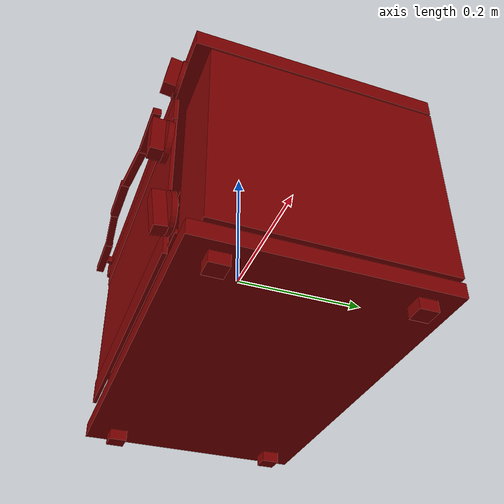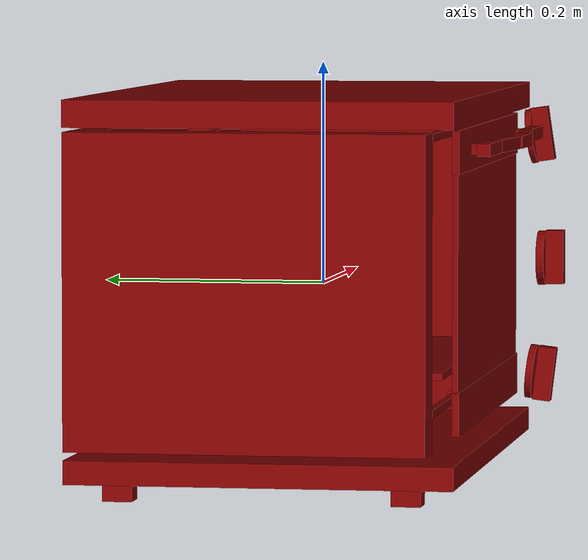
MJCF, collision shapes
<?xml version='1.0' encoding='UTF-8'?>
<mujoco model="model">
  <option timestep="0.002" gravity="0.0 0.0 -9.81"/>
  <compiler angle="radian"/>
  <asset>
    <mesh file="visuals/Body001.obj" name="Body001_vis"/>
    <mesh file="visuals/Door001.obj" name="Door001_vis"/>
    <mesh file="visuals/Door001_Clear.obj" name="Door001_Clear_vis"/>
    <mesh file="visuals/Knob001.obj" name="Knob001_vis"/>
    <mesh file="visuals/Knob002.obj" name="Knob002_vis"/>
    <mesh file="visuals/Knob003.obj" name="Knob003_vis"/>
    <mesh file="visuals/Shelf001.obj" name="Shelf001_vis"/>
    <texture file="visuals/T_BC001.png" name="Body001_material" type="2d"/>
    <material name="Body001_material" rgba="1 1 1 1.0" texture="Body001_material" shininess="0.5968968570232391" specular="2"/>
    <texture file="visuals/T_BC001.png" name="Door001_material" type="2d"/>
    <material name="Door001_material" rgba="1 1 1 1.0" texture="Door001_material" shininess="0.5968968570232391" specular="2"/>
    <texture file="visuals/T_BC001.png" name="Door001_Clear_material" type="2d"/>
    <material name="Door001_Clear_material" rgba="1 1 1 0.6968325972557068" texture="Door001_Clear_material" shininess="0.5968968570232391" specular="0.3103448502657381"/>
    <texture file="visuals/T_BC001.png" name="Knob001_material" type="2d"/>
    <material name="Knob001_material" rgba="1 1 1 1.0" texture="Knob001_material" shininess="0.5968968570232391" specular="0.3103448502657381"/>
    <texture file="visuals/T_BC001.png" name="Knob002_material" type="2d"/>
    <material name="Knob002_material" rgba="1 1 1 1.0" texture="Knob002_material" shininess="0.5968968570232391" specular="0.3103448502657381"/>
    <texture file="visuals/T_BC001.png" name="Knob003_material" type="2d"/>
    <material name="Knob003_material" rgba="1 1 1 1.0" texture="Knob003_material" shininess="0.5968968570232391" specular="0.3103448502657381"/>
    <texture file="visuals/T_BC001.png" name="Shelf001_material" type="2d"/>
    <material name="Shelf001_material" rgba="1 1 1 1.0" texture="Shelf001_material" shininess="0.5968968570232391" specular="0.3103448502657381"/>
  </asset>
  <default>
    <default class="visual">
      <geom conaffinity="0" contype="0" group="1" type="mesh"/>
    </default>
    <default class="collision">
      <geom group="0" rgba="0.5 0 0 0.5"/>
    </default>
    <default class="spawn">
      <geom group="0" rgba="1 1 1 0.5" contype="0" conaffinity="0"/>
      <site group="0" rgba="1 1 1 0.5"/>
    </default>
    <default class="region">
      <geom group="1" conaffinity="0" contype="0" rgba="0 1 0 0"/>
    </default>
  </default>
  <worldbody>
    <body>
      <body name="object">
        <geom mesh="Body001_vis" type="mesh" solimp="0.998 0.998 0.001" solref="0.001 1" friction="0.95 0.3 0.1" class="visual" material="Body001_material"/>
        <geom class="collision" type="box" pos="-0.000000 0.014233 0.162156" size="0.270452082157135 0.1699085831642151 0.012023569084703922" quat="1.0 0.0 0.0 0.0"/>
        <geom class="collision" type="box" pos="-0.000000 0.014233 -0.147614" size="0.270452082157135 0.1699085831642151 0.010556421242654324" quat="1.0 0.0 0.0 0.0"/>
        <geom class="collision" type="box" pos="-0.248253 0.026392 0.008116" size="0.022198986262083054 0.15775004029273987 0.1382344365119934" quat="1.0 0.0 0.0 0.0"/>
        <geom class="collision" type="box" pos="0.216123 0.024037 0.008116" size="0.05432868003845215 0.16010470688343048 0.1382344365119934" quat="1.0 0.0 0.0 0.0"/>
        <geom class="collision" type="box" pos="0.241426 -0.112387 -0.165798" size="0.012542815878987312 0.01298120804131031 0.008328156545758247" quat="1.0 0.0 0.0 0.0"/>
        <geom class="collision" type="box" pos="-0.239811 -0.112387 -0.165798" size="0.012542815878987312 0.01298120804131031 0.008328156545758247" quat="1.0 0.0 0.0 0.0"/>
        <geom class="collision" type="box" pos="-0.239811 0.140115 -0.165798" size="0.012542815878987312 0.01298120804131031 0.008328156545758247" quat="1.0 0.0 0.0 0.0"/>
        <geom class="collision" type="box" pos="0.241426 0.140115 -0.165798" size="0.012542815878987312 0.01298120804131031 0.008328156545758247" quat="1.0 0.0 0.0 0.0"/>
        <geom class="collision" type="box" pos="-0.032895 0.169553 0.008116" size="0.19400712847709656 0.014055480249226093 0.1382344365119934" quat="1.0 0.0 0.0 0.0"/>
        <geom class="collision" type="box" pos="-0.032895 -0.098265 -0.118401" size="0.19400712847709656 0.0030847685411572456 0.00362002314068377" quat="1.0 0.0 0.0 0.0"/>
        <geom class="collision" type="box" pos="0.162467 -0.098344 -0.118184" size="0.004035026766359806 0.006262065842747688 0.006104288622736931" quat="1.0 0.0 0.0 0.0"/>
        <geom class="collision" type="box" pos="-0.226797 -0.098344 -0.118184" size="0.004035026766359806 0.006262065842747688 0.006104288622736931" quat="1.0 0.0 0.0 0.0"/>
        <geom class="collision" type="box" pos="-0.226797 0.107385 -0.118184" size="0.004035026766359806 0.006262065842747688 0.006104288622736931" quat="1.0 0.0 0.0 0.0"/>
        <geom class="collision" type="box" pos="0.162467 0.107385 -0.118184" size="0.004035026766359806 0.006262065842747688 0.006104288622736931" quat="1.0 0.0 0.0 0.0"/>
        <geom class="collision" type="box" pos="-0.032895 0.107464 -0.118401" size="0.19400712847709656 0.0030847685411572456 0.00362002314068377" quat="1.0 0.0 0.0 0.0"/>
        <geom class="collision" type="box" pos="-0.032895 0.107464 0.132027" size="0.19400712847709656 0.0030847685411572456 0.00362002314068377" quat="1.0 0.0 0.0 0.0"/>
        <geom class="collision" type="box" pos="0.162467 0.107385 0.132244" size="0.004035026766359806 0.006262065842747688 0.006104288622736931" quat="1.0 0.0 0.0 0.0"/>
        <geom class="collision" type="box" pos="-0.226797 0.107385 0.132244" size="0.004035026766359806 0.006262065842747688 0.006104288622736931" quat="1.0 0.0 0.0 0.0"/>
        <geom class="collision" type="box" pos="-0.226797 -0.098344 0.132244" size="0.004035026766359806 0.006262065842747688 0.006104288622736931" quat="1.0 0.0 0.0 0.0"/>
        <geom class="collision" type="box" pos="0.162467 -0.098344 0.132244" size="0.004035026766359806 0.006262065842747688 0.006104288622736931" quat="1.0 0.0 0.0 0.0"/>
        <geom class="collision" type="box" pos="-0.032895 -0.098265 0.132027" size="0.19400712847709656 0.0030847685411572456 0.00362002314068377" quat="1.0 0.0 0.0 0.0"/>
        <body name="Door001">
          <joint axis="1.0 0.0 0.0" pos="-0.031873 -0.152260 -0.134041" limited="true" name="Door001_joint" range="0.0 1.5707963267948966" type="hinge" damping="1" frictionloss="1" armature=".01" stiffness="1" springref="-0.5"/>
          <geom mesh="Door001_vis" type="mesh" solimp="0.998 0.998 0.001" solref="0.001 1" friction="0.95 0.3 0.1" class="visual" material="Door001_material"/>
          <geom class="collision" type="box" pos="-0.031864 -0.153075 -0.095676" size="0.2067703753709793 0.0028597707860171795 0.01883315108716488" quat="1.0 0.0 0.0 0.0"/>
          <geom class="collision" type="box" pos="-0.031864 -0.153075 0.129619" size="0.20677082240581512 0.0028597780037671328 0.018833179026842117" quat="1.0 0.0 0.0 0.0"/>
          <geom class="collision" type="box" pos="-0.191611 -0.166534 0.131073" size="0.00463320966809988 0.00550489267334342 0.0045085931196808815" quat="1.0 0.0 0.0 0.0"/>
          <geom class="collision" type="box" pos="0.120615 -0.166534 0.131073" size="0.004633217118680477 0.005504903383553028 0.004508600570261478" quat="1.0 0.0 0.0 0.0"/>
          <geom class="collision" type="box" pos="0.122179 -0.175200 0.131252" size="0.03814881294965744 0.00580997858196497 0.005507947877049446" quat="1.0 0.0 0.0 0.0"/>
          <geom class="collision" type="box" pos="0.043982 -0.178604 0.131252" size="0.03815019875764847 0.0054564401507377625 0.005508295260369778" quat="0.9990391731262207 0.0 0.0 0.043826133012771606"/>
          <geom class="collision" type="box" pos="-0.031928 -0.183298 0.131252" size="0.03732737898826599 0.006376134231686592 0.005507962312549353" quat="1.0 0.0 0.0 0.0"/>
          <geom class="collision" type="box" pos="-0.107248 -0.179405 0.131252" size="0.03815019875764847 0.0054564401507377625 0.005508295260369778" quat="0.9990391731262207 0.0 -0.0 -0.043826136738061905"/>
          <geom class="collision" type="box" pos="-0.185444 -0.175200 0.131252" size="0.038148924708366394 0.005810007452964783 0.005507976748049259" quat="1.0 0.0 0.0 0.0"/>
          <body name="Door001_Clear">
            <geom mesh="Door001_Clear_vis" type="mesh" solimp="0.998 0.998 0.001" solref="0.001 1" friction="0.95 0.3 0.1" class="visual" material="Door001_Clear_material"/>
            <geom class="collision" type="box" pos="-0.031454 -0.152541 0.017556" size="0.20486299693584442 0.002326563000679016 0.1269056499004364" quat="1.0 0.0 0.0 0.0"/>
          </body>
        </body>
        <body name="Knob001">
          <joint axis="2.217794885756244e-18 0.990011990070343 -0.14098358154296875" pos="0.226004 -0.170095 0.125553" limited="true" name="Knob001_joint" range="0.0 4.101523742186674" type="hinge" damping="0.05" armature="0.001"/>
          <geom mesh="Knob001_vis" type="mesh" solimp="0.998 0.998 0.001" solref="0.001 1" friction="0.95 0.3 0.1" class="visual" material="Knob001_material"/>
          <geom class="collision" type="cylinder" pos="0.226012 -0.163492 0.124361" size="0.02550620213150978 0.0026782257482409477" quat="0.7548805475234985 0.6558622717857361 -1.0993246057261376e-17 1.0993251847525664e-17"/>
          <geom class="collision" type="box" pos="0.226004 -0.173553 0.126736" size="0.009824174456298351 0.008267324417829514 0.025249572470784187" quat="0.997356653213501 -0.07266192883253098 -1.6134189280710082e-17 5.568699292004484e-25"/>
        </body>
        <body name="Knob002">
          <joint axis="0.0 1.0 0.0" pos="0.226004 -0.178515 0.009310" limited="true" name="Knob002_joint" range="0.0 3.9269908169872414" type="hinge" damping="0.05" armature="0.001"/>
          <geom mesh="Knob002_vis" type="mesh" solimp="0.998 0.998 0.001" solref="0.001 1" friction="0.95 0.3 0.1" class="visual" material="Knob002_material"/>
          <geom class="collision" type="cylinder" pos="0.226012 -0.173510 0.009261" size="0.02550620213150978 0.003547457978129387" quat="0.7071067094802856 0.7071068286895752 0.0 0.0"/>
          <geom class="collision" type="box" pos="0.226004 -0.185741 0.010222" size="0.009824174456298351 0.008414632640779018 0.02529742941260338" quat="1.0 0.0 0.0 0.0"/>
        </body>
        <body name="Knob003">
          <joint axis="-2.3283064365386963e-10 0.9943745136260986 0.1059219092130661" pos="0.226004 -0.171665 -0.099773" limited="true" name="Knob003_joint" range="0.0 3.141592653589793" type="hinge" damping="0.05" armature="0.001"/>
          <geom mesh="Knob003_vis" type="mesh" solimp="0.998 0.998 0.001" solref="0.001 1" friction="0.95 0.3 0.1" class="visual" material="Knob003_material"/>
          <geom class="collision" type="cylinder" pos="0.226012 -0.163727 -0.098471" size="0.02550620026886463 0.0032028122805058956" quat="0.6666486859321594 0.7453721165657043 8.740040810252656e-18 -8.740045773336331e-18"/>
          <geom class="collision" type="box" pos="0.226004 -0.176208 -0.100345" size="0.009286690503358841 0.008267322555184364 0.025249570608139038" quat="0.9981943368911743 0.06006744131445885 1.3337646312442843e-17 2.5226426741124556e-24"/>
        </body>
        <body name="Shelf001">
          <joint axis="0.0 -1.0 0.0" pos="-0.031825 -0.002390 -0.064863" limited="true" name="Shelf001_joint" range="0.0 0.15" type="slide" damping="1" frictionloss="1" armature=".01" stiffness="0.05"/>
          <geom mesh="Shelf001_vis" type="mesh" solimp="0.998 0.998 0.001" solref="0.001 1" friction="0.95 0.3 0.1" class="visual" material="Shelf001_material"/>
          <geom class="collision" type="box" pos="-0.032351 -0.002546 -0.064152" size="0.1906738132238388 0.136488676071167 0.0032051606103777885" quat="1.0 0.0 0.0 0.0"/>
        </body>
        <geom class="region" name="reg_int" type="box" pos="-0.031618499999999994 0.002840499999999996 0.005526500000000004" size="0.2010595 0.1513185 0.1477815"/>
        <geom class="region" name="reg_main" type="box" pos="0.0 0.016108499999999998 2.6999999999999247e-05" size="0.270452 0.1787485 0.174153"/>
      </body>
    </body>
  </worldbody>
  <actuator>
    <motor name="Door001_joint_actuator" joint="Door001_joint" gear="20"/>
    <motor name="Knob001_joint_actuator" joint="Knob001_joint" gear="10"/>
    <motor name="Knob002_joint_actuator" joint="Knob002_joint" gear="10"/>
    <motor name="Knob003_joint_actuator" joint="Knob003_joint" gear="10"/>
    <motor name="Shelf001_joint_actuator" joint="Shelf001_joint" gear="20"/>
  </actuator>
</mujoco>
